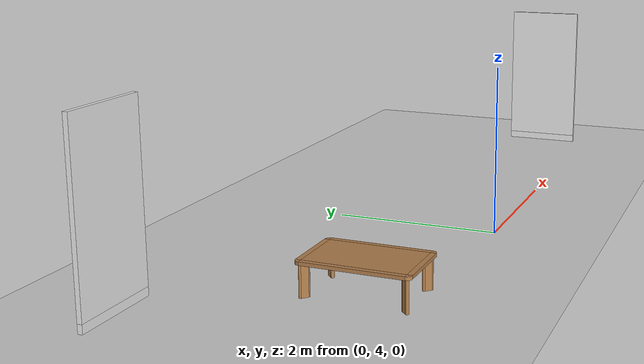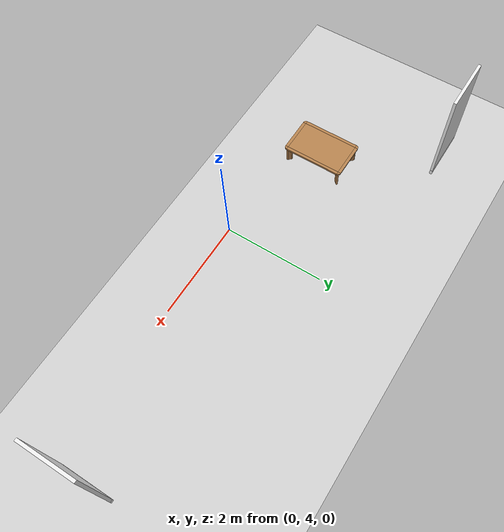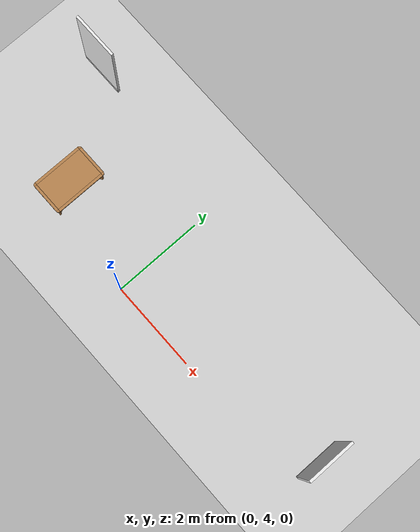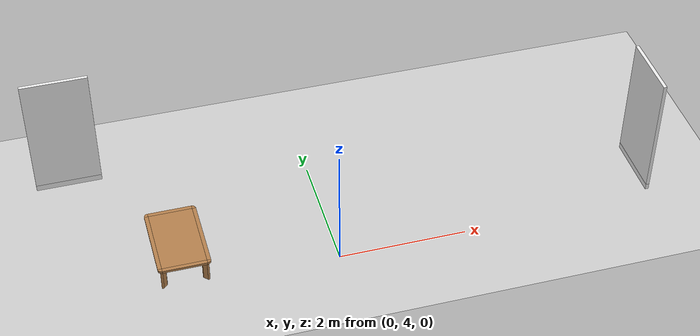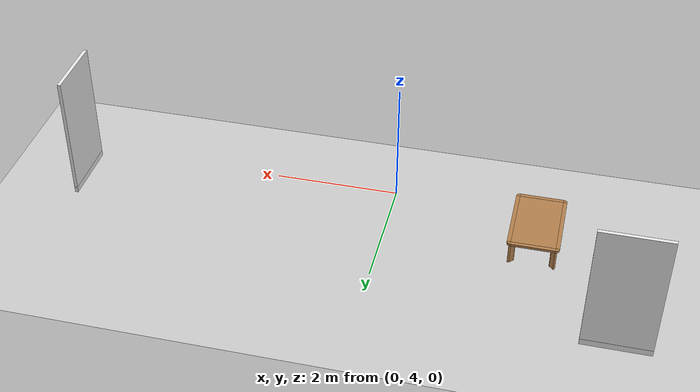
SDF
<sdf version="1.6">
 <world name="megaweb">
  <model name="ground_plane">
   <static>1</static>
   <link name="link">
    <collision name="collision">
     <geometry><plane><normal>0 0 1</normal><size>100 100</size></plane></geometry>
     <surface><friction><ode><mu>100</mu><mu2>50</mu2></ode></friction></surface>
    </collision>
    <visual name="visual">
     <cast_shadows>0</cast_shadows>
     <geometry><plane><normal>0 0 1</normal><size>100 100</size></plane></geometry>
     <material>
      <script><uri>file://media/materials/scripts/gazebo.material</uri><name>Gazebo/Grey</name></script>
     </material>
    </visual>
   </link>
  </model>
  <model name="full_wall_55_900_2090">
   <link name="link">
    <inertial>
     <mass>50</mass>
     <inertia><ixx>1</ixx><ixy>0</ixy><ixz>0</ixz><iyy>1</iyy><iyz>0</iyz><izz>1</izz></inertia>
    </inertial>
    <visual name="bottom_frame">
     <pose>0 0 0.05 0 -0 0</pose>
     <geometry><box><size>0.055 1.04 0.1</size></box></geometry>
     <material>
      <script><uri>model://base_materials/color/scripts</uri><name>hsr_color/white</name></script>
     </material>
    </visual>
    <collision name="collision_bottom_frame">
     <pose>0 0 0.05 0 -0 0</pose>
     <geometry><box><size>0.055 1.04 0.1</size></box></geometry>
    </collision>
    <visual name="wall">
     <pose>0 0 1.095 0 -0 0</pose>
     <geometry><box><size>0.055 1.04 1.99</size></box></geometry>
     <material>
      <script>
       <uri>model://base_materials/wall/scripts</uri>
       <uri>model://base_materials/wall/textures</uri>
       <name>wall/white_noise</name>
      </script>
     </material>
    </visual>
    <collision name="collision_wall">
     <pose>0 0 1.095 0 -0 0</pose>
     <geometry><box><size>0.055 1.04 1.99</size></box></geometry>
    </collision>
    <velocity_decay><linear>0</linear><angular>0</angular></velocity_decay>
   </link>
   <static>1</static>
   <pose>5.1 4.67156 0 0 -0 0</pose>
  </model>
  <model name="full_wall_55_900_2090_0">
   <link name="link">
    <inertial>
     <mass>50</mass>
     <inertia><ixx>1</ixx><ixy>0</ixy><ixz>0</ixz><iyy>1</iyy><iyz>0</iyz><izz>1</izz></inertia>
    </inertial>
    <visual name="bottom_frame">
     <pose>0 0 0.05 0 -0 0</pose>
     <geometry><box><size>0.055 1.04 0.1</size></box></geometry>
     <material>
      <script><uri>model://base_materials/color/scripts</uri><name>hsr_color/white</name></script>
     </material>
    </visual>
    <collision name="collision_bottom_frame">
     <pose>0 0 0.05 0 -0 0</pose>
     <geometry><box><size>0.055 1.04 0.1</size></box></geometry>
    </collision>
    <visual name="wall">
     <pose>0 0 1.095 0 -0 0</pose>
     <geometry><box><size>0.055 1.04 1.99</size></box></geometry>
     <material>
      <script>
       <uri>model://base_materials/wall/scripts</uri>
       <uri>model://base_materials/wall/textures</uri>
       <name>wall/white_noise</name>
      </script>
     </material>
    </visual>
    <collision name="collision_wall">
     <pose>0 0 1.095 0 -0 0</pose>
     <geometry><box><size>0.055 1.04 1.99</size></box></geometry>
    </collision>
    <velocity_decay><linear>0</linear><angular>0</angular></velocity_decay>
   </link>
   <static>1</static>
   <pose>-3.72484 6.70714 0 0 -0 1.57</pose>
  </model>
  <model name="kitchen_lowtable">
   <link name="link">
    <inertial>
     <mass>10</mass>
     <inertia><ixx>1</ixx><ixy>0</ixy><ixz>0</ixz><iyy>1</iyy><iyz>0</iyz><izz>1</izz></inertia>
    </inertial>
    <visual name="center_board">
     <pose>0 0 0.38 0 -0 0</pose>
     <geometry><box><size>0.68 1.13 0.04</size></box></geometry>
     <material>
      <script><uri>model://base_materials/wood/scripts/wood.material</uri><name>base_materials/wood</name></script>
     </material>
    </visual>
    <collision name="collision_center_board">
     <pose>0 0 0.38 0 -0 0</pose>
     <geometry><box><size>0.68 1.13 0.04</size></box></geometry>
    </collision>
    <visual name="front_board">
     <pose>0.37 0 0.38 0 -0 0</pose>
     <geometry><box><size>0.06 1.13 0.04</size></box></geometry>
     <material>
      <script><uri>model://base_materials/wood/scripts/wood.material</uri><name>base_materials/wood</name></script>
     </material>
    </visual>
    <collision name="collision_front_board">
     <pose>0.37 0 0.38 0 -0 0</pose>
     <geometry><box><size>0.06 1.13 0.04</size></box></geometry>
    </collision>
    <visual name="back_board">
     <pose>-0.37 0 0.38 0 -0 0</pose>
     <geometry><box><size>0.06 1.13 0.04</size></box></geometry>
     <material>
      <script><uri>model://base_materials/wood/scripts/wood.material</uri><name>base_materials/wood</name></script>
     </material>
    </visual>
    <collision name="collision_back_board">
     <pose>-0.37 0 0.38 0 -0 0</pose>
     <geometry><box><size>0.06 1.13 0.04</size></box></geometry>
    </collision>
    <visual name="right_board">
     <pose>0 0.595 0.38 0 -0 0</pose>
     <geometry><box><size>0.68 0.06 0.04</size></box></geometry>
     <material>
      <script><uri>model://base_materials/wood/scripts/wood.material</uri><name>base_materials/wood</name></script>
     </material>
    </visual>
    <collision name="collision_right_board">
     <pose>0 0.595 0.38 0 -0 0</pose>
     <geometry><box><size>0.68 0.06 0.04</size></box></geometry>
    </collision>
    <visual name="left_board">
     <pose>0 -0.595 0.38 0 -0 0</pose>
     <geometry><box><size>0.68 0.06 0.04</size></box></geometry>
     <material>
      <script><uri>model://base_materials/wood/scripts/wood.material</uri><name>base_materials/wood</name></script>
     </material>
    </visual>
    <collision name="collision_left_board">
     <pose>0 -0.595 0.38 0 -0 0</pose>
     <geometry><box><size>0.68 0.06 0.04</size></box></geometry>
    </collision>
    <visual name="front_right_corner_board">
     <pose>0.34 0.565 0.38 0 -0 0</pose>
     <geometry><cylinder><radius>0.06</radius><length>0.039</length></cylinder></geometry>
     <material>
      <script><uri>model://base_materials/wood/scripts/wood.material</uri><name>base_materials/wood</name></script>
     </material>
    </visual>
    <collision name="collision_front_right_corner_board">
     <pose>0.34 0.565 0.38 0 -0 0</pose>
     <geometry><cylinder><radius>0.06</radius><length>0.039</length></cylinder></geometry>
    </collision>
    <visual name="front_left_corner_board">
     <pose>0.34 -0.565 0.38 0 -0 0</pose>
     <geometry><cylinder><radius>0.06</radius><length>0.039</length></cylinder></geometry>
     <material>
      <script><uri>model://base_materials/wood/scripts/wood.material</uri><name>base_materials/wood</name></script>
     </material>
    </visual>
    <collision name="collision_front_left_corner_board">
     <pose>0.34 -0.565 0.38 0 -0 0</pose>
     <geometry><cylinder><radius>0.06</radius><length>0.039</length></cylinder></geometry>
    </collision>
    <visual name="front_back_right_corner_board">
     <pose>-0.34 0.565 0.38 0 -0 0</pose>
     <geometry><cylinder><radius>0.06</radius><length>0.039</length></cylinder></geometry>
     <material>
      <script><uri>model://base_materials/wood/scripts/wood.material</uri><name>base_materials/wood</name></script>
     </material>
    </visual>
    <collision name="collision_back_right_corner_board">
     <pose>-0.34 0.565 0.38 0 -0 0</pose>
     <geometry><cylinder><radius>0.06</radius><length>0.039</length></cylinder></geometry>
    </collision>
    <visual name="front_back_left_corner_board">
     <pose>-0.34 -0.565 0.38 0 -0 0</pose>
     <geometry><cylinder><radius>0.06</radius><length>0.039</length></cylinder></geometry>
     <material>
      <script><uri>model://base_materials/wood/scripts/wood.material</uri><name>base_materials/wood</name></script>
     </material>
    </visual>
    <collision name="collision_back_left_corner_board">
     <pose>-0.34 -0.565 0.38 0 -0 0</pose>
     <geometry><cylinder><radius>0.06</radius><length>0.039</length></cylinder></geometry>
    </collision>
    <visual name="front_left_corner_frame1">
     <pose>0.345858 -0.57086 0.18 0 -0 0</pose>
     <geometry><cylinder><radius>0.02</radius><length>0.36</length></cylinder></geometry>
     <material>
      <script><uri>model://base_materials/wood/scripts/wood.material</uri><name>base_materials/wood</name></script>
     </material>
    </visual>
    <collision name="collision_front_left_corner_frame1">
     <pose>0.345858 -0.57086 0.18 0 -0 0</pose>
     <geometry><cylinder><radius>0.02</radius><length>0.36</length></cylinder></geometry>
    </collision>
    <visual name="front_left_corner_frame2">
     <pose>0.317574 -0.54257 0.18 0 -0 0.7854</pose>
     <geometry><box><size>0.04 0.08 0.36</size></box></geometry>
     <material>
      <script><uri>model://base_materials/wood/scripts/wood.material</uri><name>base_materials/wood</name></script>
     </material>
    </visual>
    <collision name="collision_front_left_corner_frame2">
     <pose>0.317574 -0.54257 0.18 0 -0 0.7854</pose>
     <geometry><box><size>0.04 0.08 0.36</size></box></geometry>
    </collision>
    <visual name="front_left_corner_frame3">
     <pose>0.289289 -0.51429 0.18 0 -0 0</pose>
     <geometry><cylinder><radius>0.02</radius><length>0.36</length></cylinder></geometry>
     <material>
      <script><uri>model://base_materials/wood/scripts/wood.material</uri><name>base_materials/wood</name></script>
     </material>
    </visual>
    <collision name="collision_front_left_corner_frame3">
     <pose>0.289289 -0.51429 0.18 0 -0 0</pose>
     <geometry><cylinder><radius>0.02</radius><length>0.36</length></cylinder></geometry>
    </collision>
    <visual name="front_right_corner_frame1">
     <pose>0.345858 0.57086 0.18 0 -0 0</pose>
     <geometry><cylinder><radius>0.02</radius><length>0.36</length></cylinder></geometry>
     <material>
      <script><uri>model://base_materials/wood/scripts/wood.material</uri><name>base_materials/wood</name></script>
     </material>
    </visual>
    <collision name="collision_front_right_corner_frame1">
     <pose>0.345858 0.57086 0.18 0 -0 0</pose>
     <geometry><cylinder><radius>0.02</radius><length>0.36</length></cylinder></geometry>
    </collision>
    <visual name="front_right_corner_frame2">
     <pose>0.317574 0.54257 0.18 0 0 -0.7854</pose>
     <geometry><box><size>0.04 0.08 0.36</size></box></geometry>
     <material>
      <script><uri>model://base_materials/wood/scripts/wood.material</uri><name>base_materials/wood</name></script>
     </material>
    </visual>
    <collision name="collision_front_right_corner_frame2">
     <pose>0.317574 0.54257 0.18 0 0 -0.7854</pose>
     <geometry><box><size>0.04 0.08 0.36</size></box></geometry>
    </collision>
    <visual name="front_right_corner_frame3">
     <pose>0.289289 0.51429 0.18 0 -0 0</pose>
     <geometry><cylinder><radius>0.02</radius><length>0.36</length></cylinder></geometry>
     <material>
      <script><uri>model://base_materials/wood/scripts/wood.material</uri><name>base_materials/wood</name></script>
     </material>
    </visual>
    <collision name="collision_front_right_corner_frame3">
     <pose>0.289289 0.51429 0.18 0 -0 0</pose>
     <geometry><cylinder><radius>0.02</radius><length>0.36</length></cylinder></geometry>
    </collision>
    <visual name="back_left_corner_frame1">
     <pose>-0.345858 -0.57086 0.18 0 -0 0</pose>
     <geometry><cylinder><radius>0.02</radius><length>0.36</length></cylinder></geometry>
     <material>
      <script><uri>model://base_materials/wood/scripts/wood.material</uri><name>base_materials/wood</name></script>
     </material>
    </visual>
    <collision name="collision_back_left_corner_frame1">
     <pose>-0.345858 -0.57086 0.18 0 -0 0</pose>
     <geometry><cylinder><radius>0.02</radius><length>0.36</length></cylinder></geometry>
    </collision>
    <visual name="back_left_corner_frame2">
     <pose>-0.317574 -0.54257 0.18 0 0 -0.7854</pose>
     <geometry><box><size>0.04 0.08 0.36</size></box></geometry>
     <material>
      <script><uri>model://base_materials/wood/scripts/wood.material</uri><name>base_materials/wood</name></script>
     </material>
    </visual>
    <collision name="collision_back_left_corner_frame2">
     <pose>-0.317574 -0.54257 0.18 0 0 -0.7854</pose>
     <geometry><box><size>0.04 0.08 0.36</size></box></geometry>
    </collision>
    <visual name="back_left_corner_frame3">
     <pose>-0.289289 -0.51429 0.18 0 -0 0</pose>
     <geometry><cylinder><radius>0.02</radius><length>0.36</length></cylinder></geometry>
     <material>
      <script><uri>model://base_materials/wood/scripts/wood.material</uri><name>base_materials/wood</name></script>
     </material>
    </visual>
    <collision name="collision_back_left_corner_frame3">
     <pose>-0.289289 -0.51429 0.18 0 -0 0</pose>
     <geometry><cylinder><radius>0.02</radius><length>0.36</length></cylinder></geometry>
    </collision>
    <visual name="back_right_corner_frame1">
     <pose>-0.345858 0.57086 0.18 0 -0 0</pose>
     <geometry><cylinder><radius>0.02</radius><length>0.36</length></cylinder></geometry>
     <material>
      <script><uri>model://base_materials/wood/scripts/wood.material</uri><name>base_materials/wood</name></script>
     </material>
    </visual>
    <collision name="collision_back_right_corner_frame1">
     <pose>-0.345858 0.57086 0.18 0 -0 0</pose>
     <geometry><cylinder><radius>0.02</radius><length>0.36</length></cylinder></geometry>
    </collision>
    <visual name="back_right_corner_frame2">
     <pose>-0.317574 0.54257 0.18 0 -0 0.7854</pose>
     <geometry><box><size>0.04 0.08 0.36</size></box></geometry>
     <material>
      <script><uri>model://base_materials/wood/scripts/wood.material</uri><name>base_materials/wood</name></script>
     </material>
    </visual>
    <collision name="collision_back_right_corner_frame2">
     <pose>-0.317574 0.54257 0.18 0 -0 0.7854</pose>
     <geometry><box><size>0.04 0.08 0.36</size></box></geometry>
    </collision>
    <visual name="back_right_corner_frame3">
     <pose>-0.289289 0.51429 0.18 0 -0 0</pose>
     <geometry><cylinder><radius>0.02</radius><length>0.36</length></cylinder></geometry>
     <material>
      <script><uri>model://base_materials/wood/scripts/wood.material</uri><name>base_materials/wood</name></script>
     </material>
    </visual>
    <collision name="collision_back_right_corner_frame3">
     <pose>-0.289289 0.51429 0.18 0 -0 0</pose>
     <geometry><cylinder><radius>0.02</radius><length>0.36</length></cylinder></geometry>
    </collision>
    <velocity_decay><linear>0</linear><angular>0</angular></velocity_decay>
   </link>
   <static>1</static>
   <pose>-2.3478 4.65755 0 0 -0 0</pose>
  </model>
 </world>
</sdf>
